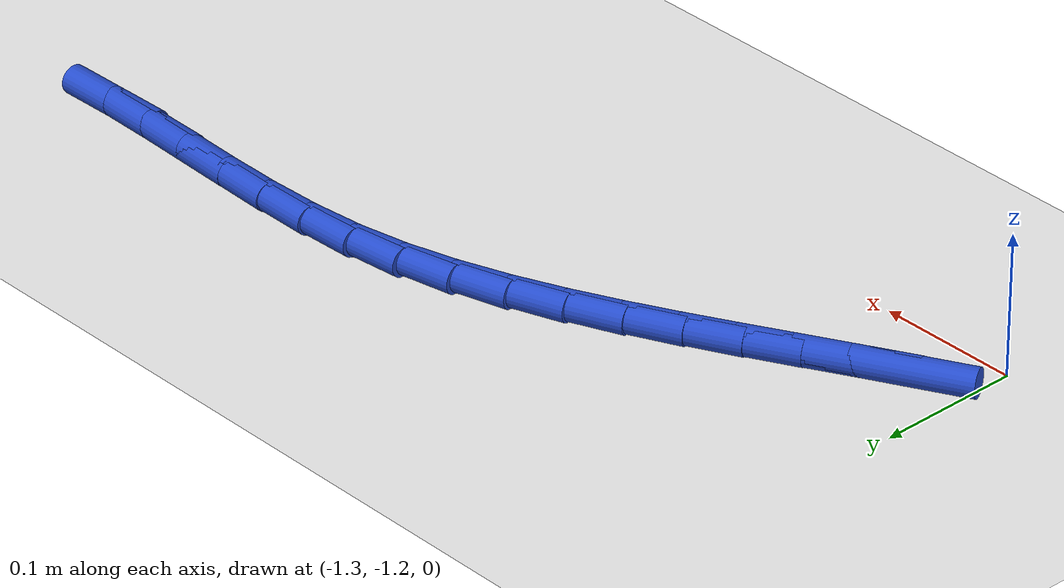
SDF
<sdf version="1.6">
 <world name="default">
  <model name="ground_plane">
   <static>1</static>
   <link name="link">
    <collision name="collision">
     <geometry><plane><normal>0 0 1</normal><size>100 100</size></plane></geometry>
     <surface><friction><ode><mu>100</mu><mu2>50</mu2></ode></friction></surface>
    </collision>
    <visual name="visual">
     <cast_shadows>0</cast_shadows>
     <geometry><plane><normal>0 0 1</normal><size>100 100</size></plane></geometry>
     <material>
      <script><uri>file://media/materials/scripts/gazebo.material</uri><name>Gazebo/WhiteGlow</name></script>
     </material>
    </visual>
   </link>
  </model>
  <model name="line">
   <link name="link_159">
    <pose>-1.2690308434155328 -1.1520355572518448 0.01 0 1.57 0.48976557020749417</pose>
    <collision name="collision">
     <geometry><cylinder><radius>0.01</radius><length>0.08</length></cylinder></geometry>
    </collision>
    <visual name="visual">
     <material>
      <script><name>Gazebo/Blue</name><uri>file://media/materials/scripts/gazebo.material</uri></script>
     </material>
     <geometry><cylinder><radius>0.01</radius><length>0.08</length></cylinder></geometry>
    </visual>
   </link>
   <link name="link_160">
    <pose>-1.2371167848965823 -1.1350225856702698 0.01 0 1.57 0.4992162811282722</pose>
    <collision name="collision">
     <geometry><cylinder><radius>0.01</radius><length>0.08</length></cylinder></geometry>
    </collision>
    <visual name="visual">
     <material>
      <script><name>Gazebo/Blue</name><uri>file://media/materials/scripts/gazebo.material</uri></script>
     </material>
     <geometry><cylinder><radius>0.01</radius><length>0.08</length></cylinder></geometry>
    </visual>
   </link>
   <link name="link_161">
    <pose>-1.2056027760407853 -1.117838459639235 0.01 0 1.57 0.49984916637185234</pose>
    <collision name="collision">
     <geometry><cylinder><radius>0.01</radius><length>0.08</length></cylinder></geometry>
    </collision>
    <visual name="visual">
     <material>
      <script><name>Gazebo/Blue</name><uri>file://media/materials/scripts/gazebo.material</uri></script>
     </material>
     <geometry><cylinder><radius>0.01</radius><length>0.08</length></cylinder></geometry>
    </visual>
   </link>
   <link name="link_162">
    <pose>-1.173943336812676 -1.1005490291326654 0.01 0 1.57 0.49159650775998376</pose>
    <collision name="collision">
     <geometry><cylinder><radius>0.01</radius><length>0.08</length></cylinder></geometry>
    </collision>
    <visual name="visual">
     <material>
      <script><name>Gazebo/Blue</name><uri>file://media/materials/scripts/gazebo.material</uri></script>
     </material>
     <geometry><cylinder><radius>0.01</radius><length>0.08</length></cylinder></geometry>
    </visual>
   </link>
   <link name="link_163">
    <pose>-1.141618835415327 -1.0832411782233158 0.01 0 1.57 0.47282169821263836</pose>
    <collision name="collision">
     <geometry><cylinder><radius>0.01</radius><length>0.08</length></cylinder></geometry>
    </collision>
    <visual name="visual">
     <material>
      <script><name>Gazebo/Blue</name><uri>file://media/materials/scripts/gazebo.material</uri></script>
     </material>
     <geometry><cylinder><radius>0.01</radius><length>0.08</length></cylinder></geometry>
    </visual>
   </link>
   <link name="link_164">
    <pose>-1.1084363333389968 -1.0662676388435544 0.01 0 1.57 0.4422422920092683</pose>
    <collision name="collision">
     <geometry><cylinder><radius>0.01</radius><length>0.08</length></cylinder></geometry>
    </collision>
    <visual name="visual">
     <material>
      <script><name>Gazebo/Blue</name><uri>file://media/materials/scripts/gazebo.material</uri></script>
     </material>
     <geometry><cylinder><radius>0.01</radius><length>0.08</length></cylinder></geometry>
    </visual>
   </link>
   <link name="link_165">
    <pose>-1.074426812926901 -1.0501633593403974 0.01 0 1.57 0.3995808723765579</pose>
    <collision name="collision">
     <geometry><cylinder><radius>0.01</radius><length>0.08</length></cylinder></geometry>
    </collision>
    <visual name="visual">
     <material>
      <script><name>Gazebo/Blue</name><uri>file://media/materials/scripts/gazebo.material</uri></script>
     </material>
     <geometry><cylinder><radius>0.01</radius><length>0.08</length></cylinder></geometry>
    </visual>
   </link>
   <link name="link_166">
    <pose>-1.0396256264854427 -1.0354668441344181 0.01 0 1.57 0.3442988788522687</pose>
    <collision name="collision">
     <geometry><cylinder><radius>0.01</radius><length>0.08</length></cylinder></geometry>
    </collision>
    <visual name="visual">
     <material>
      <script><name>Gazebo/Blue</name><uri>file://media/materials/scripts/gazebo.material</uri></script>
     </material>
     <geometry><cylinder><radius>0.01</radius><length>0.08</length></cylinder></geometry>
    </visual>
   </link>
   <link name="link_167">
    <pose>-1.0040681263210256 -1.0227165976461923 0.01 0 1.57 0.2757544544304365</pose>
    <collision name="collision">
     <geometry><cylinder><radius>0.01</radius><length>0.08</length></cylinder></geometry>
    </collision>
    <visual name="visual">
     <material>
      <script><name>Gazebo/Blue</name><uri>file://media/materials/scripts/gazebo.material</uri></script>
     </material>
     <geometry><cylinder><radius>0.01</radius><length>0.08</length></cylinder></geometry>
    </visual>
   </link>
   <link name="link_168">
    <pose>-0.9677896647400539 -1.0124511242962941 0.01 0 1.57 0.19348278057903787</pose>
    <collision name="collision">
     <geometry><cylinder><radius>0.01</radius><length>0.08</length></cylinder></geometry>
    </collision>
    <visual name="visual">
     <material>
      <script><name>Gazebo/Blue</name><uri>file://media/materials/scripts/gazebo.material</uri></script>
     </material>
     <geometry><cylinder><radius>0.01</radius><length>0.08</length></cylinder></geometry>
    </visual>
   </link>
   <link name="link_169">
    <pose>-0.9308256340901634 -1.0052086186913962 0.01 0 1.57 0.10584010666993153</pose>
    <collision name="collision">
     <geometry><cylinder><radius>0.01</radius><length>0.08</length></cylinder></geometry>
    </collision>
    <visual name="visual">
     <material>
      <script><name>Gazebo/Blue</name><uri>file://media/materials/scripts/gazebo.material</uri></script>
     </material>
     <geometry><cylinder><radius>0.01</radius><length>0.08</length></cylinder></geometry>
    </visual>
   </link>
   <link name="link_170">
    <pose>-0.8932515461274866 -1.0012168566600448 0.01 0 1.57 0.03701079353013697</pose>
    <collision name="collision">
     <geometry><cylinder><radius>0.01</radius><length>0.08</length></cylinder></geometry>
    </collision>
    <visual name="visual">
     <material>
      <script><name>Gazebo/Blue</name><uri>file://media/materials/scripts/gazebo.material</uri></script>
     </material>
     <geometry><cylinder><radius>0.01</radius><length>0.08</length></cylinder></geometry>
    </visual>
   </link>
   <link name="link_171">
    <pose>-0.8552583983762672 -0.9998100577105427 0.01 0 1.57 -0.00922939657466982</pose>
    <collision name="collision">
     <geometry><cylinder><radius>0.01</radius><length>0.08</length></cylinder></geometry>
    </collision>
    <visual name="visual">
     <material>
      <script><name>Gazebo/Blue</name><uri>file://media/materials/scripts/gazebo.material</uri></script>
     </material>
     <geometry><cylinder><radius>0.01</radius><length>0.08</length></cylinder></geometry>
    </visual>
   </link>
   <link name="link_172">
    <pose>-0.8170578420854473 -1.0001626358050548 0.01 0 1.57 -0.03366511003386456</pose>
    <collision name="collision">
     <geometry><cylinder><radius>0.01</radius><length>0.08</length></cylinder></geometry>
    </collision>
    <visual name="visual">
     <material>
      <script><name>Gazebo/Blue</name><uri>file://media/materials/scripts/gazebo.material</uri></script>
     </material>
     <geometry><cylinder><radius>0.01</radius><length>0.08</length></cylinder></geometry>
    </visual>
   </link>
   <link name="link_173">
    <pose>-0.778861528503969 -1.0014490049057465 0.01 0 1.57 -0.036701749330736624</pose>
    <collision name="collision">
     <geometry><cylinder><radius>0.01</radius><length>0.08</length></cylinder></geometry>
    </collision>
    <visual name="visual">
     <material>
      <script><name>Gazebo/Blue</name><uri>file://media/materials/scripts/gazebo.material</uri></script>
     </material>
     <geometry><cylinder><radius>0.01</radius><length>0.08</length></cylinder></geometry>
    </visual>
   </link>
   <link name="link_174">
    <pose>-0.740881108880776 -1.0028435789747836 0.01 0 1.57 -0.018031099315368553</pose>
    <collision name="collision">
     <geometry><cylinder><radius>0.01</radius><length>0.08</length></cylinder></geometry>
    </collision>
    <visual name="visual">
     <material>
      <script><name>Gazebo/Blue</name><uri>file://media/materials/scripts/gazebo.material</uri></script>
     </material>
     <geometry><cylinder><radius>0.01</radius><length>0.08</length></cylinder></geometry>
    </visual>
   </link>
   <link name="link_175">
    <pose>-0.7033282344648109 -1.0035207719743313 0.01 0 1.57 0.023449719899951846</pose>
    <collision name="collision">
     <geometry><cylinder><radius>0.01</radius><length>0.08</length></cylinder></geometry>
    </collision>
    <visual name="visual">
     <material>
      <script><name>Gazebo/Blue</name><uri>file://media/materials/scripts/gazebo.material</uri></script>
     </material>
     <geometry><cylinder><radius>0.01</radius><length>0.08</length></cylinder></geometry>
    </visual>
   </link>
  </model>
 </world>
</sdf>
